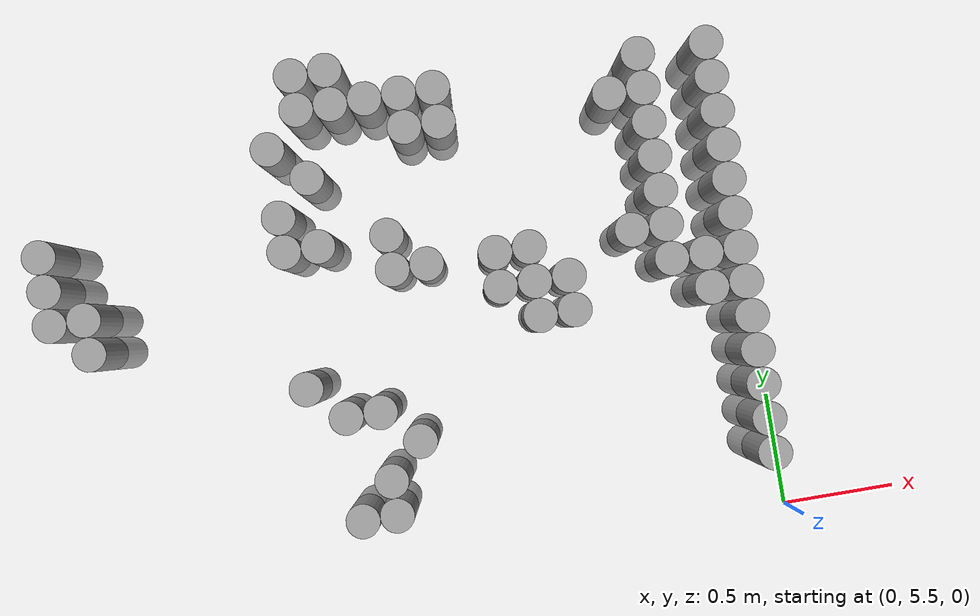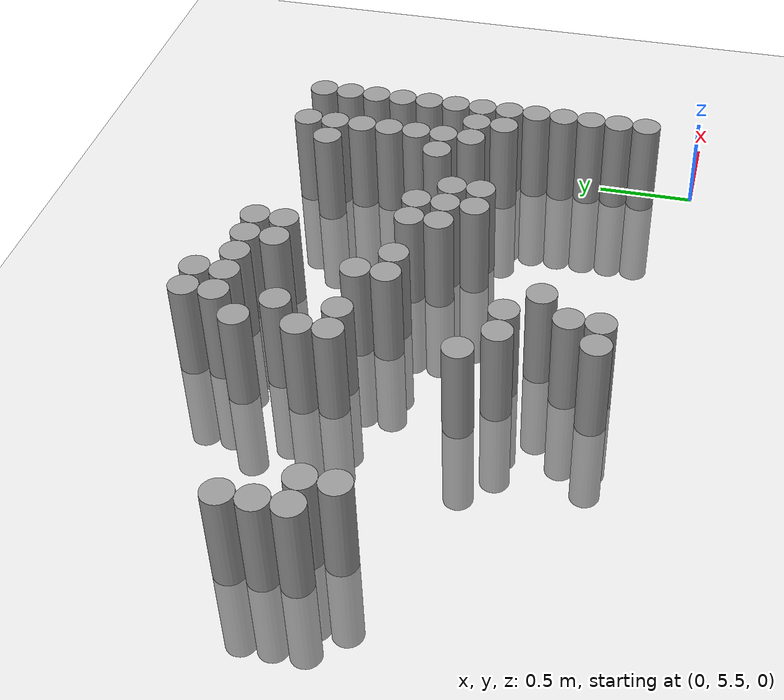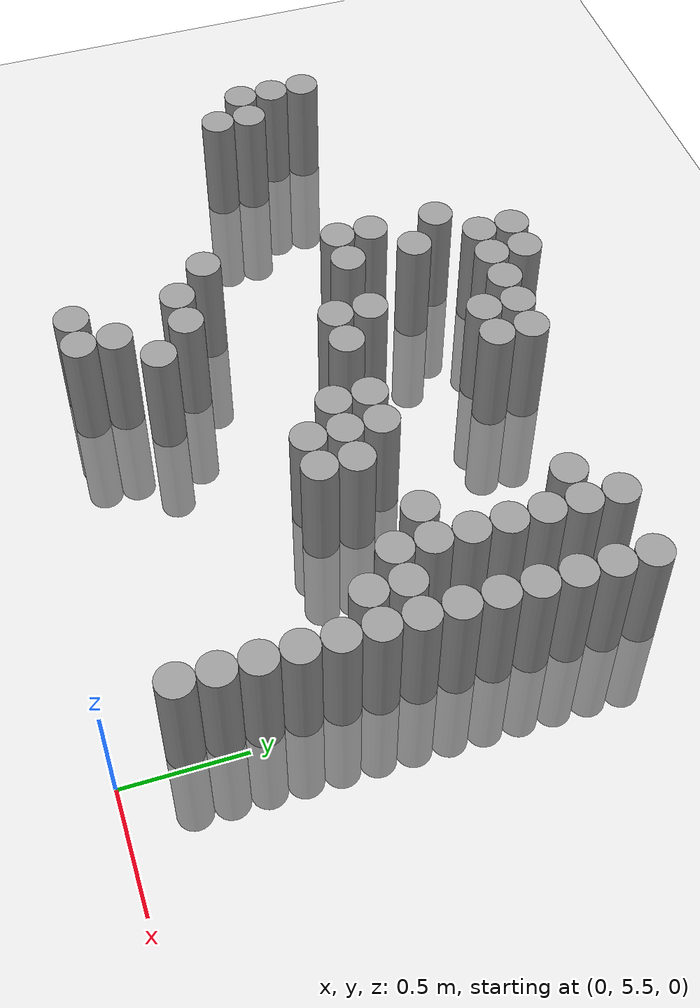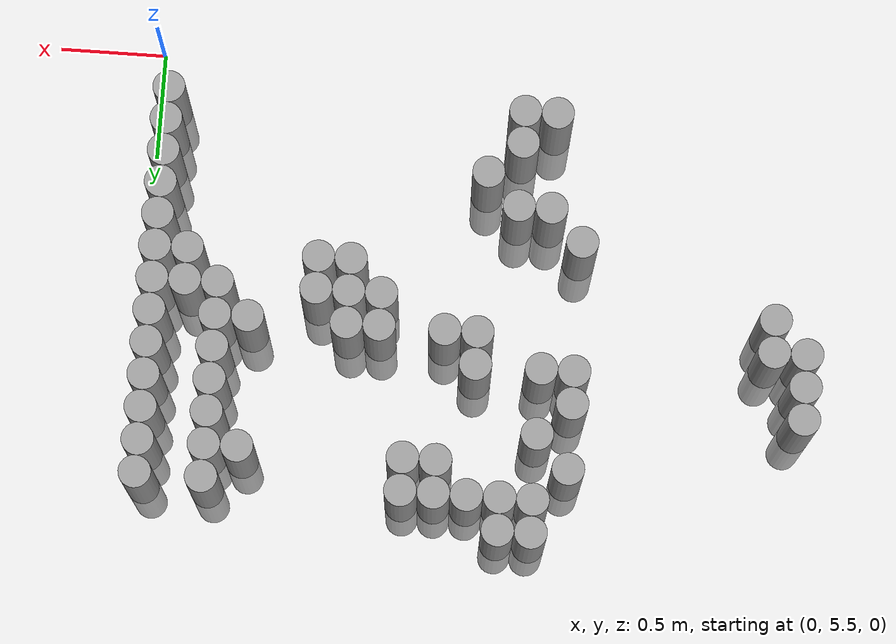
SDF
<sdf version="1.6">
 <world name="default">
  <model name="ground_plane">
   <static>1</static>
   <static>1</static>
   <link name="link">
    <collision name="collision">
     <geometry><plane><normal>0 0 1</normal><size>100 100</size></plane></geometry>
     <surface><friction><ode><mu>100</mu><mu2>50</mu2></ode></friction></surface>
    </collision>
    <visual name="visual">
     <cast_shadows>0</cast_shadows>
     <geometry><plane><normal>0 0 1</normal><size>100 100</size></plane></geometry>
     <material>
      <script><uri>file://media/materials/scripts/gazebo.material</uri><name>Gazebo/Grey</name></script>
     </material>
    </visual>
   </link>
  </model>
  <model name="unit_cylinder_174">
   <static>1</static>
   <pose>-3.075000 6.825000 0.000000 0.000000 0.000000 0.000000</pose>
   <link name="link">
    <inertial>
     <mass>1</mass>
     <inertia><ixx>0.145833</ixx><ixy>0</ixy><ixz>0</ixz><iyy>0.145833</iyy><iyz>0</iyz><izz>0.125</izz></inertia>
    </inertial>
    <collision name="collision">
     <geometry><cylinder><radius>0.075000</radius><length>1</length></cylinder></geometry>
    </collision>
    <visual name="visual">
     <geometry><cylinder><radius>0.075000</radius><length>1</length></cylinder></geometry>
     <material>
      <script><name>Gazebo/Grey</name><uri>file://media/materials/scripts/gazebo.material</uri></script>
     </material>
    </visual>
   </link>
  </model>
  <model name="unit_cylinder_175">
   <static>1</static>
   <pose>-3.075000 6.975000 0.000000 0.000000 0.000000 0.000000</pose>
   <link name="link">
    <inertial>
     <mass>1</mass>
     <inertia><ixx>0.145833</ixx><ixy>0</ixy><ixz>0</ixz><iyy>0.145833</iyy><iyz>0</iyz><izz>0.125</izz></inertia>
    </inertial>
    <collision name="collision">
     <geometry><cylinder><radius>0.075000</radius><length>1</length></cylinder></geometry>
    </collision>
    <visual name="visual">
     <geometry><cylinder><radius>0.075000</radius><length>1</length></cylinder></geometry>
     <material>
      <script><name>Gazebo/Grey</name><uri>file://media/materials/scripts/gazebo.material</uri></script>
     </material>
    </visual>
   </link>
  </model>
  <model name="unit_cylinder_176">
   <static>1</static>
   <pose>-3.075000 7.125000 0.000000 0.000000 0.000000 0.000000</pose>
   <link name="link">
    <inertial>
     <mass>1</mass>
     <inertia><ixx>0.145833</ixx><ixy>0</ixy><ixz>0</ixz><iyy>0.145833</iyy><iyz>0</iyz><izz>0.125</izz></inertia>
    </inertial>
    <collision name="collision">
     <geometry><cylinder><radius>0.075000</radius><length>1</length></cylinder></geometry>
    </collision>
    <visual name="visual">
     <geometry><cylinder><radius>0.075000</radius><length>1</length></cylinder></geometry>
     <material>
      <script><name>Gazebo/Grey</name><uri>file://media/materials/scripts/gazebo.material</uri></script>
     </material>
    </visual>
   </link>
  </model>
  <model name="unit_cylinder_181">
   <static>1</static>
   <pose>-2.925000 6.675000 0.000000 0.000000 0.000000 0.000000</pose>
   <link name="link">
    <inertial>
     <mass>1</mass>
     <inertia><ixx>0.145833</ixx><ixy>0</ixy><ixz>0</ixz><iyy>0.145833</iyy><iyz>0</iyz><izz>0.125</izz></inertia>
    </inertial>
    <collision name="collision">
     <geometry><cylinder><radius>0.075000</radius><length>1</length></cylinder></geometry>
    </collision>
    <visual name="visual">
     <geometry><cylinder><radius>0.075000</radius><length>1</length></cylinder></geometry>
     <material>
      <script><name>Gazebo/Grey</name><uri>file://media/materials/scripts/gazebo.material</uri></script>
     </material>
    </visual>
   </link>
  </model>
  <model name="unit_cylinder_182">
   <static>1</static>
   <pose>-2.925000 6.825000 0.000000 0.000000 0.000000 0.000000</pose>
   <link name="link">
    <inertial>
     <mass>1</mass>
     <inertia><ixx>0.145833</ixx><ixy>0</ixy><ixz>0</ixz><iyy>0.145833</iyy><iyz>0</iyz><izz>0.125</izz></inertia>
    </inertial>
    <collision name="collision">
     <geometry><cylinder><radius>0.075000</radius><length>1</length></cylinder></geometry>
    </collision>
    <visual name="visual">
     <geometry><cylinder><radius>0.075000</radius><length>1</length></cylinder></geometry>
     <material>
      <script><name>Gazebo/Grey</name><uri>file://media/materials/scripts/gazebo.material</uri></script>
     </material>
    </visual>
   </link>
  </model>
  <model name="unit_cylinder_191">
   <static>1</static>
   <pose>-2.025000 6.375000 0.000000 0.000000 0.000000 0.000000</pose>
   <link name="link">
    <inertial>
     <mass>1</mass>
     <inertia><ixx>0.145833</ixx><ixy>0</ixy><ixz>0</ixz><iyy>0.145833</iyy><iyz>0</iyz><izz>0.125</izz></inertia>
    </inertial>
    <collision name="collision">
     <geometry><cylinder><radius>0.075000</radius><length>1</length></cylinder></geometry>
    </collision>
    <visual name="visual">
     <geometry><cylinder><radius>0.075000</radius><length>1</length></cylinder></geometry>
     <material>
      <script><name>Gazebo/Grey</name><uri>file://media/materials/scripts/gazebo.material</uri></script>
     </material>
    </visual>
   </link>
  </model>
  <model name="unit_cylinder_192">
   <static>1</static>
   <pose>-2.025000 6.975000 0.000000 0.000000 0.000000 0.000000</pose>
   <link name="link">
    <inertial>
     <mass>1</mass>
     <inertia><ixx>0.145833</ixx><ixy>0</ixy><ixz>0</ixz><iyy>0.145833</iyy><iyz>0</iyz><izz>0.125</izz></inertia>
    </inertial>
    <collision name="collision">
     <geometry><cylinder><radius>0.075000</radius><length>1</length></cylinder></geometry>
    </collision>
    <visual name="visual">
     <geometry><cylinder><radius>0.075000</radius><length>1</length></cylinder></geometry>
     <material>
      <script><name>Gazebo/Grey</name><uri>file://media/materials/scripts/gazebo.material</uri></script>
     </material>
    </visual>
   </link>
  </model>
  <model name="unit_cylinder_193">
   <static>1</static>
   <pose>-2.025000 7.125000 0.000000 0.000000 0.000000 0.000000</pose>
   <link name="link">
    <inertial>
     <mass>1</mass>
     <inertia><ixx>0.145833</ixx><ixy>0</ixy><ixz>0</ixz><iyy>0.145833</iyy><iyz>0</iyz><izz>0.125</izz></inertia>
    </inertial>
    <collision name="collision">
     <geometry><cylinder><radius>0.075000</radius><length>1</length></cylinder></geometry>
    </collision>
    <visual name="visual">
     <geometry><cylinder><radius>0.075000</radius><length>1</length></cylinder></geometry>
     <material>
      <script><name>Gazebo/Grey</name><uri>file://media/materials/scripts/gazebo.material</uri></script>
     </material>
    </visual>
   </link>
  </model>
  <model name="unit_cylinder_194">
   <static>1</static>
   <pose>-2.025000 7.425000 0.000000 0.000000 0.000000 0.000000</pose>
   <link name="link">
    <inertial>
     <mass>1</mass>
     <inertia><ixx>0.145833</ixx><ixy>0</ixy><ixz>0</ixz><iyy>0.145833</iyy><iyz>0</iyz><izz>0.125</izz></inertia>
    </inertial>
    <collision name="collision">
     <geometry><cylinder><radius>0.075000</radius><length>1</length></cylinder></geometry>
    </collision>
    <visual name="visual">
     <geometry><cylinder><radius>0.075000</radius><length>1</length></cylinder></geometry>
     <material>
      <script><name>Gazebo/Grey</name><uri>file://media/materials/scripts/gazebo.material</uri></script>
     </material>
    </visual>
   </link>
  </model>
  <model name="unit_cylinder_199">
   <static>1</static>
   <pose>-1.875000 5.775000 0.000000 0.000000 0.000000 0.000000</pose>
   <link name="link">
    <inertial>
     <mass>1</mass>
     <inertia><ixx>0.145833</ixx><ixy>0</ixy><ixz>0</ixz><iyy>0.145833</iyy><iyz>0</iyz><izz>0.125</izz></inertia>
    </inertial>
    <collision name="collision">
     <geometry><cylinder><radius>0.075000</radius><length>1</length></cylinder></geometry>
    </collision>
    <visual name="visual">
     <geometry><cylinder><radius>0.075000</radius><length>1</length></cylinder></geometry>
     <material>
      <script><name>Gazebo/Grey</name><uri>file://media/materials/scripts/gazebo.material</uri></script>
     </material>
    </visual>
   </link>
  </model>
  <model name="unit_cylinder_200">
   <static>1</static>
   <pose>-1.875000 6.225000 0.000000 0.000000 0.000000 0.000000</pose>
   <link name="link">
    <inertial>
     <mass>1</mass>
     <inertia><ixx>0.145833</ixx><ixy>0</ixy><ixz>0</ixz><iyy>0.145833</iyy><iyz>0</iyz><izz>0.125</izz></inertia>
    </inertial>
    <collision name="collision">
     <geometry><cylinder><radius>0.075000</radius><length>1</length></cylinder></geometry>
    </collision>
    <visual name="visual">
     <geometry><cylinder><radius>0.075000</radius><length>1</length></cylinder></geometry>
     <material>
      <script><name>Gazebo/Grey</name><uri>file://media/materials/scripts/gazebo.material</uri></script>
     </material>
    </visual>
   </link>
  </model>
  <model name="unit_cylinder_201">
   <static>1</static>
   <pose>-1.875000 6.975000 0.000000 0.000000 0.000000 0.000000</pose>
   <link name="link">
    <inertial>
     <mass>1</mass>
     <inertia><ixx>0.145833</ixx><ixy>0</ixy><ixz>0</ixz><iyy>0.145833</iyy><iyz>0</iyz><izz>0.125</izz></inertia>
    </inertial>
    <collision name="collision">
     <geometry><cylinder><radius>0.075000</radius><length>1</length></cylinder></geometry>
    </collision>
    <visual name="visual">
     <geometry><cylinder><radius>0.075000</radius><length>1</length></cylinder></geometry>
     <material>
      <script><name>Gazebo/Grey</name><uri>file://media/materials/scripts/gazebo.material</uri></script>
     </material>
    </visual>
   </link>
  </model>
  <model name="unit_cylinder_202">
   <static>1</static>
   <pose>-1.875000 7.275000 0.000000 0.000000 0.000000 0.000000</pose>
   <link name="link">
    <inertial>
     <mass>1</mass>
     <inertia><ixx>0.145833</ixx><ixy>0</ixy><ixz>0</ixz><iyy>0.145833</iyy><iyz>0</iyz><izz>0.125</izz></inertia>
    </inertial>
    <collision name="collision">
     <geometry><cylinder><radius>0.075000</radius><length>1</length></cylinder></geometry>
    </collision>
    <visual name="visual">
     <geometry><cylinder><radius>0.075000</radius><length>1</length></cylinder></geometry>
     <material>
      <script><name>Gazebo/Grey</name><uri>file://media/materials/scripts/gazebo.material</uri></script>
     </material>
    </visual>
   </link>
  </model>
  <model name="unit_cylinder_203">
   <static>1</static>
   <pose>-1.875000 7.575000 0.000000 0.000000 0.000000 0.000000</pose>
   <link name="link">
    <inertial>
     <mass>1</mass>
     <inertia><ixx>0.145833</ixx><ixy>0</ixy><ixz>0</ixz><iyy>0.145833</iyy><iyz>0</iyz><izz>0.125</izz></inertia>
    </inertial>
    <collision name="collision">
     <geometry><cylinder><radius>0.075000</radius><length>1</length></cylinder></geometry>
    </collision>
    <visual name="visual">
     <geometry><cylinder><radius>0.075000</radius><length>1</length></cylinder></geometry>
     <material>
      <script><name>Gazebo/Grey</name><uri>file://media/materials/scripts/gazebo.material</uri></script>
     </material>
    </visual>
   </link>
  </model>
  <model name="unit_cylinder_204">
   <static>1</static>
   <pose>-1.875000 7.725000 0.000000 0.000000 0.000000 0.000000</pose>
   <link name="link">
    <inertial>
     <mass>1</mass>
     <inertia><ixx>0.145833</ixx><ixy>0</ixy><ixz>0</ixz><iyy>0.145833</iyy><iyz>0</iyz><izz>0.125</izz></inertia>
    </inertial>
    <collision name="collision">
     <geometry><cylinder><radius>0.075000</radius><length>1</length></cylinder></geometry>
    </collision>
    <visual name="visual">
     <geometry><cylinder><radius>0.075000</radius><length>1</length></cylinder></geometry>
     <material>
      <script><name>Gazebo/Grey</name><uri>file://media/materials/scripts/gazebo.material</uri></script>
     </material>
    </visual>
   </link>
  </model>
  <model name="unit_cylinder_210">
   <static>1</static>
   <pose>-1.725000 5.775000 0.000000 0.000000 0.000000 0.000000</pose>
   <link name="link">
    <inertial>
     <mass>1</mass>
     <inertia><ixx>0.145833</ixx><ixy>0</ixy><ixz>0</ixz><iyy>0.145833</iyy><iyz>0</iyz><izz>0.125</izz></inertia>
    </inertial>
    <collision name="collision">
     <geometry><cylinder><radius>0.075000</radius><length>1</length></cylinder></geometry>
    </collision>
    <visual name="visual">
     <geometry><cylinder><radius>0.075000</radius><length>1</length></cylinder></geometry>
     <material>
      <script><name>Gazebo/Grey</name><uri>file://media/materials/scripts/gazebo.material</uri></script>
     </material>
    </visual>
   </link>
  </model>
  <model name="unit_cylinder_211">
   <static>1</static>
   <pose>-1.725000 5.925000 0.000000 0.000000 0.000000 0.000000</pose>
   <link name="link">
    <inertial>
     <mass>1</mass>
     <inertia><ixx>0.145833</ixx><ixy>0</ixy><ixz>0</ixz><iyy>0.145833</iyy><iyz>0</iyz><izz>0.125</izz></inertia>
    </inertial>
    <collision name="collision">
     <geometry><cylinder><radius>0.075000</radius><length>1</length></cylinder></geometry>
    </collision>
    <visual name="visual">
     <geometry><cylinder><radius>0.075000</radius><length>1</length></cylinder></geometry>
     <material>
      <script><name>Gazebo/Grey</name><uri>file://media/materials/scripts/gazebo.material</uri></script>
     </material>
    </visual>
   </link>
  </model>
  <model name="unit_cylinder_212">
   <static>1</static>
   <pose>-1.725000 6.225000 0.000000 0.000000 0.000000 0.000000</pose>
   <link name="link">
    <inertial>
     <mass>1</mass>
     <inertia><ixx>0.145833</ixx><ixy>0</ixy><ixz>0</ixz><iyy>0.145833</iyy><iyz>0</iyz><izz>0.125</izz></inertia>
    </inertial>
    <collision name="collision">
     <geometry><cylinder><radius>0.075000</radius><length>1</length></cylinder></geometry>
    </collision>
    <visual name="visual">
     <geometry><cylinder><radius>0.075000</radius><length>1</length></cylinder></geometry>
     <material>
      <script><name>Gazebo/Grey</name><uri>file://media/materials/scripts/gazebo.material</uri></script>
     </material>
    </visual>
   </link>
  </model>
  <model name="unit_cylinder_213">
   <static>1</static>
   <pose>-1.725000 7.575000 0.000000 0.000000 0.000000 0.000000</pose>
   <link name="link">
    <inertial>
     <mass>1</mass>
     <inertia><ixx>0.145833</ixx><ixy>0</ixy><ixz>0</ixz><iyy>0.145833</iyy><iyz>0</iyz><izz>0.125</izz></inertia>
    </inertial>
    <collision name="collision">
     <geometry><cylinder><radius>0.075000</radius><length>1</length></cylinder></geometry>
    </collision>
    <visual name="visual">
     <geometry><cylinder><radius>0.075000</radius><length>1</length></cylinder></geometry>
     <material>
      <script><name>Gazebo/Grey</name><uri>file://media/materials/scripts/gazebo.material</uri></script>
     </material>
    </visual>
   </link>
  </model>
  <model name="unit_cylinder_214">
   <static>1</static>
   <pose>-1.725000 7.725000 0.000000 0.000000 0.000000 0.000000</pose>
   <link name="link">
    <inertial>
     <mass>1</mass>
     <inertia><ixx>0.145833</ixx><ixy>0</ixy><ixz>0</ixz><iyy>0.145833</iyy><iyz>0</iyz><izz>0.125</izz></inertia>
    </inertial>
    <collision name="collision">
     <geometry><cylinder><radius>0.075000</radius><length>1</length></cylinder></geometry>
    </collision>
    <visual name="visual">
     <geometry><cylinder><radius>0.075000</radius><length>1</length></cylinder></geometry>
     <material>
      <script><name>Gazebo/Grey</name><uri>file://media/materials/scripts/gazebo.material</uri></script>
     </material>
    </visual>
   </link>
  </model>
  <model name="unit_cylinder_218">
   <static>1</static>
   <pose>-1.575000 6.075000 0.000000 0.000000 0.000000 0.000000</pose>
   <link name="link">
    <inertial>
     <mass>1</mass>
     <inertia><ixx>0.145833</ixx><ixy>0</ixy><ixz>0</ixz><iyy>0.145833</iyy><iyz>0</iyz><izz>0.125</izz></inertia>
    </inertial>
    <collision name="collision">
     <geometry><cylinder><radius>0.075000</radius><length>1</length></cylinder></geometry>
    </collision>
    <visual name="visual">
     <geometry><cylinder><radius>0.075000</radius><length>1</length></cylinder></geometry>
     <material>
      <script><name>Gazebo/Grey</name><uri>file://media/materials/scripts/gazebo.material</uri></script>
     </material>
    </visual>
   </link>
  </model>
  <model name="unit_cylinder_219">
   <static>1</static>
   <pose>-1.575000 6.825000 0.000000 0.000000 0.000000 0.000000</pose>
   <link name="link">
    <inertial>
     <mass>1</mass>
     <inertia><ixx>0.145833</ixx><ixy>0</ixy><ixz>0</ixz><iyy>0.145833</iyy><iyz>0</iyz><izz>0.125</izz></inertia>
    </inertial>
    <collision name="collision">
     <geometry><cylinder><radius>0.075000</radius><length>1</length></cylinder></geometry>
    </collision>
    <visual name="visual">
     <geometry><cylinder><radius>0.075000</radius><length>1</length></cylinder></geometry>
     <material>
      <script><name>Gazebo/Grey</name><uri>file://media/materials/scripts/gazebo.material</uri></script>
     </material>
    </visual>
   </link>
  </model>
  <model name="unit_cylinder_220">
   <static>1</static>
   <pose>-1.575000 6.975000 0.000000 0.000000 0.000000 0.000000</pose>
   <link name="link">
    <inertial>
     <mass>1</mass>
     <inertia><ixx>0.145833</ixx><ixy>0</ixy><ixz>0</ixz><iyy>0.145833</iyy><iyz>0</iyz><izz>0.125</izz></inertia>
    </inertial>
    <collision name="collision">
     <geometry><cylinder><radius>0.075000</radius><length>1</length></cylinder></geometry>
    </collision>
    <visual name="visual">
     <geometry><cylinder><radius>0.075000</radius><length>1</length></cylinder></geometry>
     <material>
      <script><name>Gazebo/Grey</name><uri>file://media/materials/scripts/gazebo.material</uri></script>
     </material>
    </visual>
   </link>
  </model>
  <model name="unit_cylinder_221">
   <static>1</static>
   <pose>-1.575000 7.575000 0.000000 0.000000 0.000000 0.000000</pose>
   <link name="link">
    <inertial>
     <mass>1</mass>
     <inertia><ixx>0.145833</ixx><ixy>0</ixy><ixz>0</ixz><iyy>0.145833</iyy><iyz>0</iyz><izz>0.125</izz></inertia>
    </inertial>
    <collision name="collision">
     <geometry><cylinder><radius>0.075000</radius><length>1</length></cylinder></geometry>
    </collision>
    <visual name="visual">
     <geometry><cylinder><radius>0.075000</radius><length>1</length></cylinder></geometry>
     <material>
      <script><name>Gazebo/Grey</name><uri>file://media/materials/scripts/gazebo.material</uri></script>
     </material>
    </visual>
   </link>
  </model>
  <model name="unit_cylinder_225">
   <static>1</static>
   <pose>-1.425000 6.825000 0.000000 0.000000 0.000000 0.000000</pose>
   <link name="link">
    <inertial>
     <mass>1</mass>
     <inertia><ixx>0.145833</ixx><ixy>0</ixy><ixz>0</ixz><iyy>0.145833</iyy><iyz>0</iyz><izz>0.125</izz></inertia>
    </inertial>
    <collision name="collision">
     <geometry><cylinder><radius>0.075000</radius><length>1</length></cylinder></geometry>
    </collision>
    <visual name="visual">
     <geometry><cylinder><radius>0.075000</radius><length>1</length></cylinder></geometry>
     <material>
      <script><name>Gazebo/Grey</name><uri>file://media/materials/scripts/gazebo.material</uri></script>
     </material>
    </visual>
   </link>
  </model>
  <model name="unit_cylinder_226">
   <static>1</static>
   <pose>-1.425000 7.425000 0.000000 0.000000 0.000000 0.000000</pose>
   <link name="link">
    <inertial>
     <mass>1</mass>
     <inertia><ixx>0.145833</ixx><ixy>0</ixy><ixz>0</ixz><iyy>0.145833</iyy><iyz>0</iyz><izz>0.125</izz></inertia>
    </inertial>
    <collision name="collision">
     <geometry><cylinder><radius>0.075000</radius><length>1</length></cylinder></geometry>
    </collision>
    <visual name="visual">
     <geometry><cylinder><radius>0.075000</radius><length>1</length></cylinder></geometry>
     <material>
      <script><name>Gazebo/Grey</name><uri>file://media/materials/scripts/gazebo.material</uri></script>
     </material>
    </visual>
   </link>
  </model>
  <model name="unit_cylinder_227">
   <static>1</static>
   <pose>-1.425000 7.575000 0.000000 0.000000 0.000000 0.000000</pose>
   <link name="link">
    <inertial>
     <mass>1</mass>
     <inertia><ixx>0.145833</ixx><ixy>0</ixy><ixz>0</ixz><iyy>0.145833</iyy><iyz>0</iyz><izz>0.125</izz></inertia>
    </inertial>
    <collision name="collision">
     <geometry><cylinder><radius>0.075000</radius><length>1</length></cylinder></geometry>
    </collision>
    <visual name="visual">
     <geometry><cylinder><radius>0.075000</radius><length>1</length></cylinder></geometry>
     <material>
      <script><name>Gazebo/Grey</name><uri>file://media/materials/scripts/gazebo.material</uri></script>
     </material>
    </visual>
   </link>
  </model>
  <model name="unit_cylinder_232">
   <static>1</static>
   <pose>-1.275000 7.425000 0.000000 0.000000 0.000000 0.000000</pose>
   <link name="link">
    <inertial>
     <mass>1</mass>
     <inertia><ixx>0.145833</ixx><ixy>0</ixy><ixz>0</ixz><iyy>0.145833</iyy><iyz>0</iyz><izz>0.125</izz></inertia>
    </inertial>
    <collision name="collision">
     <geometry><cylinder><radius>0.075000</radius><length>1</length></cylinder></geometry>
    </collision>
    <visual name="visual">
     <geometry><cylinder><radius>0.075000</radius><length>1</length></cylinder></geometry>
     <material>
      <script><name>Gazebo/Grey</name><uri>file://media/materials/scripts/gazebo.material</uri></script>
     </material>
    </visual>
   </link>
  </model>
  <model name="unit_cylinder_233">
   <static>1</static>
   <pose>-1.275000 7.575000 0.000000 0.000000 0.000000 0.000000</pose>
   <link name="link">
    <inertial>
     <mass>1</mass>
     <inertia><ixx>0.145833</ixx><ixy>0</ixy><ixz>0</ixz><iyy>0.145833</iyy><iyz>0</iyz><izz>0.125</izz></inertia>
    </inertial>
    <collision name="collision">
     <geometry><cylinder><radius>0.075000</radius><length>1</length></cylinder></geometry>
    </collision>
    <visual name="visual">
     <geometry><cylinder><radius>0.075000</radius><length>1</length></cylinder></geometry>
     <material>
      <script><name>Gazebo/Grey</name><uri>file://media/materials/scripts/gazebo.material</uri></script>
     </material>
    </visual>
   </link>
  </model>
  <model name="unit_cylinder_236">
   <static>1</static>
   <pose>-1.125000 6.675000 0.000000 0.000000 0.000000 0.000000</pose>
   <link name="link">
    <inertial>
     <mass>1</mass>
     <inertia><ixx>0.145833</ixx><ixy>0</ixy><ixz>0</ixz><iyy>0.145833</iyy><iyz>0</iyz><izz>0.125</izz></inertia>
    </inertial>
    <collision name="collision">
     <geometry><cylinder><radius>0.075000</radius><length>1</length></cylinder></geometry>
    </collision>
    <visual name="visual">
     <geometry><cylinder><radius>0.075000</radius><length>1</length></cylinder></geometry>
     <material>
      <script><name>Gazebo/Grey</name><uri>file://media/materials/scripts/gazebo.material</uri></script>
     </material>
    </visual>
   </link>
  </model>
  <model name="unit_cylinder_237">
   <static>1</static>
   <pose>-1.125000 6.825000 0.000000 0.000000 0.000000 0.000000</pose>
   <link name="link">
    <inertial>
     <mass>1</mass>
     <inertia><ixx>0.145833</ixx><ixy>0</ixy><ixz>0</ixz><iyy>0.145833</iyy><iyz>0</iyz><izz>0.125</izz></inertia>
    </inertial>
    <collision name="collision">
     <geometry><cylinder><radius>0.075000</radius><length>1</length></cylinder></geometry>
    </collision>
    <visual name="visual">
     <geometry><cylinder><radius>0.075000</radius><length>1</length></cylinder></geometry>
     <material>
      <script><name>Gazebo/Grey</name><uri>file://media/materials/scripts/gazebo.material</uri></script>
     </material>
    </visual>
   </link>
  </model>
  <model name="unit_cylinder_240">
   <static>1</static>
   <pose>-0.975000 6.525000 0.000000 0.000000 0.000000 0.000000</pose>
   <link name="link">
    <inertial>
     <mass>1</mass>
     <inertia><ixx>0.145833</ixx><ixy>0</ixy><ixz>0</ixz><iyy>0.145833</iyy><iyz>0</iyz><izz>0.125</izz></inertia>
    </inertial>
    <collision name="collision">
     <geometry><cylinder><radius>0.075000</radius><length>1</length></cylinder></geometry>
    </collision>
    <visual name="visual">
     <geometry><cylinder><radius>0.075000</radius><length>1</length></cylinder></geometry>
     <material>
      <script><name>Gazebo/Grey</name><uri>file://media/materials/scripts/gazebo.material</uri></script>
     </material>
    </visual>
   </link>
  </model>
  <model name="unit_cylinder_241">
   <static>1</static>
   <pose>-0.975000 6.675000 0.000000 0.000000 0.000000 0.000000</pose>
   <link name="link">
    <inertial>
     <mass>1</mass>
     <inertia><ixx>0.145833</ixx><ixy>0</ixy><ixz>0</ixz><iyy>0.145833</iyy><iyz>0</iyz><izz>0.125</izz></inertia>
    </inertial>
    <collision name="collision">
     <geometry><cylinder><radius>0.075000</radius><length>1</length></cylinder></geometry>
    </collision>
    <visual name="visual">
     <geometry><cylinder><radius>0.075000</radius><length>1</length></cylinder></geometry>
     <material>
      <script><name>Gazebo/Grey</name><uri>file://media/materials/scripts/gazebo.material</uri></script>
     </material>
    </visual>
   </link>
  </model>
  <model name="unit_cylinder_242">
   <static>1</static>
   <pose>-0.975000 6.825000 0.000000 0.000000 0.000000 0.000000</pose>
   <link name="link">
    <inertial>
     <mass>1</mass>
     <inertia><ixx>0.145833</ixx><ixy>0</ixy><ixz>0</ixz><iyy>0.145833</iyy><iyz>0</iyz><izz>0.125</izz></inertia>
    </inertial>
    <collision name="collision">
     <geometry><cylinder><radius>0.075000</radius><length>1</length></cylinder></geometry>
    </collision>
    <visual name="visual">
     <geometry><cylinder><radius>0.075000</radius><length>1</length></cylinder></geometry>
     <material>
      <script><name>Gazebo/Grey</name><uri>file://media/materials/scripts/gazebo.material</uri></script>
     </material>
    </visual>
   </link>
  </model>
  <model name="unit_cylinder_245">
   <static>1</static>
   <pose>-0.825000 6.525000 0.000000 0.000000 0.000000 0.000000</pose>
   <link name="link">
    <inertial>
     <mass>1</mass>
     <inertia><ixx>0.145833</ixx><ixy>0</ixy><ixz>0</ixz><iyy>0.145833</iyy><iyz>0</iyz><izz>0.125</izz></inertia>
    </inertial>
    <collision name="collision">
     <geometry><cylinder><radius>0.075000</radius><length>1</length></cylinder></geometry>
    </collision>
    <visual name="visual">
     <geometry><cylinder><radius>0.075000</radius><length>1</length></cylinder></geometry>
     <material>
      <script><name>Gazebo/Grey</name><uri>file://media/materials/scripts/gazebo.material</uri></script>
     </material>
    </visual>
   </link>
  </model>
  <model name="unit_cylinder_246">
   <static>1</static>
   <pose>-0.825000 6.675000 0.000000 0.000000 0.000000 0.000000</pose>
   <link name="link">
    <inertial>
     <mass>1</mass>
     <inertia><ixx>0.145833</ixx><ixy>0</ixy><ixz>0</ixz><iyy>0.145833</iyy><iyz>0</iyz><izz>0.125</izz></inertia>
    </inertial>
    <collision name="collision">
     <geometry><cylinder><radius>0.075000</radius><length>1</length></cylinder></geometry>
    </collision>
    <visual name="visual">
     <geometry><cylinder><radius>0.075000</radius><length>1</length></cylinder></geometry>
     <material>
      <script><name>Gazebo/Grey</name><uri>file://media/materials/scripts/gazebo.material</uri></script>
     </material>
    </visual>
   </link>
  </model>
  <model name="unit_cylinder_247">
   <static>1</static>
   <pose>-0.525000 6.825000 0.000000 0.000000 0.000000 0.000000</pose>
   <link name="link">
    <inertial>
     <mass>1</mass>
     <inertia><ixx>0.145833</ixx><ixy>0</ixy><ixz>0</ixz><iyy>0.145833</iyy><iyz>0</iyz><izz>0.125</izz></inertia>
    </inertial>
    <collision name="collision">
     <geometry><cylinder><radius>0.075000</radius><length>1</length></cylinder></geometry>
    </collision>
    <visual name="visual">
     <geometry><cylinder><radius>0.075000</radius><length>1</length></cylinder></geometry>
     <material>
      <script><name>Gazebo/Grey</name><uri>file://media/materials/scripts/gazebo.material</uri></script>
     </material>
    </visual>
   </link>
  </model>
  <model name="unit_cylinder_248">
   <static>1</static>
   <pose>-0.525000 7.425000 0.000000 0.000000 0.000000 0.000000</pose>
   <link name="link">
    <inertial>
     <mass>1</mass>
     <inertia><ixx>0.145833</ixx><ixy>0</ixy><ixz>0</ixz><iyy>0.145833</iyy><iyz>0</iyz><izz>0.125</izz></inertia>
    </inertial>
    <collision name="collision">
     <geometry><cylinder><radius>0.075000</radius><length>1</length></cylinder></geometry>
    </collision>
    <visual name="visual">
     <geometry><cylinder><radius>0.075000</radius><length>1</length></cylinder></geometry>
     <material>
      <script><name>Gazebo/Grey</name><uri>file://media/materials/scripts/gazebo.material</uri></script>
     </material>
    </visual>
   </link>
  </model>
  <model name="unit_cylinder_254">
   <static>1</static>
   <pose>-0.375000 6.675000 0.000000 0.000000 0.000000 0.000000</pose>
   <link name="link">
    <inertial>
     <mass>1</mass>
     <inertia><ixx>0.145833</ixx><ixy>0</ixy><ixz>0</ixz><iyy>0.145833</iyy><iyz>0</iyz><izz>0.125</izz></inertia>
    </inertial>
    <collision name="collision">
     <geometry><cylinder><radius>0.075000</radius><length>1</length></cylinder></geometry>
    </collision>
    <visual name="visual">
     <geometry><cylinder><radius>0.075000</radius><length>1</length></cylinder></geometry>
     <material>
      <script><name>Gazebo/Grey</name><uri>file://media/materials/scripts/gazebo.material</uri></script>
     </material>
    </visual>
   </link>
  </model>
  <model name="unit_cylinder_255">
   <static>1</static>
   <pose>-0.375000 6.825000 0.000000 0.000000 0.000000 0.000000</pose>
   <link name="link">
    <inertial>
     <mass>1</mass>
     <inertia><ixx>0.145833</ixx><ixy>0</ixy><ixz>0</ixz><iyy>0.145833</iyy><iyz>0</iyz><izz>0.125</izz></inertia>
    </inertial>
    <collision name="collision">
     <geometry><cylinder><radius>0.075000</radius><length>1</length></cylinder></geometry>
    </collision>
    <visual name="visual">
     <geometry><cylinder><radius>0.075000</radius><length>1</length></cylinder></geometry>
     <material>
      <script><name>Gazebo/Grey</name><uri>file://media/materials/scripts/gazebo.material</uri></script>
     </material>
    </visual>
   </link>
  </model>
  <model name="unit_cylinder_256">
   <static>1</static>
   <pose>-0.375000 6.975000 0.000000 0.000000 0.000000 0.000000</pose>
   <link name="link">
    <inertial>
     <mass>1</mass>
     <inertia><ixx>0.145833</ixx><ixy>0</ixy><ixz>0</ixz><iyy>0.145833</iyy><iyz>0</iyz><izz>0.125</izz></inertia>
    </inertial>
    <collision name="collision">
     <geometry><cylinder><radius>0.075000</radius><length>1</length></cylinder></geometry>
    </collision>
    <visual name="visual">
     <geometry><cylinder><radius>0.075000</radius><length>1</length></cylinder></geometry>
     <material>
      <script><name>Gazebo/Grey</name><uri>file://media/materials/scripts/gazebo.material</uri></script>
     </material>
    </visual>
   </link>
  </model>
  <model name="unit_cylinder_257">
   <static>1</static>
   <pose>-0.375000 7.125000 0.000000 0.000000 0.000000 0.000000</pose>
   <link name="link">
    <inertial>
     <mass>1</mass>
     <inertia><ixx>0.145833</ixx><ixy>0</ixy><ixz>0</ixz><iyy>0.145833</iyy><iyz>0</iyz><izz>0.125</izz></inertia>
    </inertial>
    <collision name="collision">
     <geometry><cylinder><radius>0.075000</radius><length>1</length></cylinder></geometry>
    </collision>
    <visual name="visual">
     <geometry><cylinder><radius>0.075000</radius><length>1</length></cylinder></geometry>
     <material>
      <script><name>Gazebo/Grey</name><uri>file://media/materials/scripts/gazebo.material</uri></script>
     </material>
    </visual>
   </link>
  </model>
  <model name="unit_cylinder_258">
   <static>1</static>
   <pose>-0.375000 7.275000 0.000000 0.000000 0.000000 0.000000</pose>
   <link name="link">
    <inertial>
     <mass>1</mass>
     <inertia><ixx>0.145833</ixx><ixy>0</ixy><ixz>0</ixz><iyy>0.145833</iyy><iyz>0</iyz><izz>0.125</izz></inertia>
    </inertial>
    <collision name="collision">
     <geometry><cylinder><radius>0.075000</radius><length>1</length></cylinder></geometry>
    </collision>
    <visual name="visual">
     <geometry><cylinder><radius>0.075000</radius><length>1</length></cylinder></geometry>
     <material>
      <script><name>Gazebo/Grey</name><uri>file://media/materials/scripts/gazebo.material</uri></script>
     </material>
    </visual>
   </link>
  </model>
  <model name="unit_cylinder_259">
   <static>1</static>
   <pose>-0.375000 7.425000 0.000000 0.000000 0.000000 0.000000</pose>
   <link name="link">
    <inertial>
     <mass>1</mass>
     <inertia><ixx>0.145833</ixx><ixy>0</ixy><ixz>0</ixz><iyy>0.145833</iyy><iyz>0</iyz><izz>0.125</izz></inertia>
    </inertial>
    <collision name="collision">
     <geometry><cylinder><radius>0.075000</radius><length>1</length></cylinder></geometry>
    </collision>
    <visual name="visual">
     <geometry><cylinder><radius>0.075000</radius><length>1</length></cylinder></geometry>
     <material>
      <script><name>Gazebo/Grey</name><uri>file://media/materials/scripts/gazebo.material</uri></script>
     </material>
    </visual>
   </link>
  </model>
  <model name="unit_cylinder_260">
   <static>1</static>
   <pose>-0.375000 7.575000 0.000000 0.000000 0.000000 0.000000</pose>
   <link name="link">
    <inertial>
     <mass>1</mass>
     <inertia><ixx>0.145833</ixx><ixy>0</ixy><ixz>0</ixz><iyy>0.145833</iyy><iyz>0</iyz><izz>0.125</izz></inertia>
    </inertial>
    <collision name="collision">
     <geometry><cylinder><radius>0.075000</radius><length>1</length></cylinder></geometry>
    </collision>
    <visual name="visual">
     <geometry><cylinder><radius>0.075000</radius><length>1</length></cylinder></geometry>
     <material>
      <script><name>Gazebo/Grey</name><uri>file://media/materials/scripts/gazebo.material</uri></script>
     </material>
    </visual>
   </link>
  </model>
  <model name="unit_cylinder_265">
   <static>1</static>
   <pose>-0.225000 6.525000 0.000000 0.000000 0.000000 0.000000</pose>
   <link name="link">
    <inertial>
     <mass>1</mass>
     <inertia><ixx>0.145833</ixx><ixy>0</ixy><ixz>0</ixz><iyy>0.145833</iyy><iyz>0</iyz><izz>0.125</izz></inertia>
    </inertial>
    <collision name="collision">
     <geometry><cylinder><radius>0.075000</radius><length>1</length></cylinder></geometry>
    </collision>
    <visual name="visual">
     <geometry><cylinder><radius>0.075000</radius><length>1</length></cylinder></geometry>
     <material>
      <script><name>Gazebo/Grey</name><uri>file://media/materials/scripts/gazebo.material</uri></script>
     </material>
    </visual>
   </link>
  </model>
  <model name="unit_cylinder_266">
   <static>1</static>
   <pose>-0.225000 6.675000 0.000000 0.000000 0.000000 0.000000</pose>
   <link name="link">
    <inertial>
     <mass>1</mass>
     <inertia><ixx>0.145833</ixx><ixy>0</ixy><ixz>0</ixz><iyy>0.145833</iyy><iyz>0</iyz><izz>0.125</izz></inertia>
    </inertial>
    <collision name="collision">
     <geometry><cylinder><radius>0.075000</radius><length>1</length></cylinder></geometry>
    </collision>
    <visual name="visual">
     <geometry><cylinder><radius>0.075000</radius><length>1</length></cylinder></geometry>
     <material>
      <script><name>Gazebo/Grey</name><uri>file://media/materials/scripts/gazebo.material</uri></script>
     </material>
    </visual>
   </link>
  </model>
  <model name="unit_cylinder_277">
   <static>1</static>
   <pose>-0.075000 5.775000 0.000000 0.000000 0.000000 0.000000</pose>
   <link name="link">
    <inertial>
     <mass>1</mass>
     <inertia><ixx>0.145833</ixx><ixy>0</ixy><ixz>0</ixz><iyy>0.145833</iyy><iyz>0</iyz><izz>0.125</izz></inertia>
    </inertial>
    <collision name="collision">
     <geometry><cylinder><radius>0.075000</radius><length>1</length></cylinder></geometry>
    </collision>
    <visual name="visual">
     <geometry><cylinder><radius>0.075000</radius><length>1</length></cylinder></geometry>
     <material>
      <script><name>Gazebo/Grey</name><uri>file://media/materials/scripts/gazebo.material</uri></script>
     </material>
    </visual>
   </link>
  </model>
  <model name="unit_cylinder_278">
   <static>1</static>
   <pose>-0.075000 5.925000 0.000000 0.000000 0.000000 0.000000</pose>
   <link name="link">
    <inertial>
     <mass>1</mass>
     <inertia><ixx>0.145833</ixx><ixy>0</ixy><ixz>0</ixz><iyy>0.145833</iyy><iyz>0</iyz><izz>0.125</izz></inertia>
    </inertial>
    <collision name="collision">
     <geometry><cylinder><radius>0.075000</radius><length>1</length></cylinder></geometry>
    </collision>
    <visual name="visual">
     <geometry><cylinder><radius>0.075000</radius><length>1</length></cylinder></geometry>
     <material>
      <script><name>Gazebo/Grey</name><uri>file://media/materials/scripts/gazebo.material</uri></script>
     </material>
    </visual>
   </link>
  </model>
  <model name="unit_cylinder_279">
   <static>1</static>
   <pose>-0.075000 6.075000 0.000000 0.000000 0.000000 0.000000</pose>
   <link name="link">
    <inertial>
     <mass>1</mass>
     <inertia><ixx>0.145833</ixx><ixy>0</ixy><ixz>0</ixz><iyy>0.145833</iyy><iyz>0</iyz><izz>0.125</izz></inertia>
    </inertial>
    <collision name="collision">
     <geometry><cylinder><radius>0.075000</radius><length>1</length></cylinder></geometry>
    </collision>
    <visual name="visual">
     <geometry><cylinder><radius>0.075000</radius><length>1</length></cylinder></geometry>
     <material>
      <script><name>Gazebo/Grey</name><uri>file://media/materials/scripts/gazebo.material</uri></script>
     </material>
    </visual>
   </link>
  </model>
  <model name="unit_cylinder_280">
   <static>1</static>
   <pose>-0.075000 6.225000 0.000000 0.000000 0.000000 0.000000</pose>
   <link name="link">
    <inertial>
     <mass>1</mass>
     <inertia><ixx>0.145833</ixx><ixy>0</ixy><ixz>0</ixz><iyy>0.145833</iyy><iyz>0</iyz><izz>0.125</izz></inertia>
    </inertial>
    <collision name="collision">
     <geometry><cylinder><radius>0.075000</radius><length>1</length></cylinder></geometry>
    </collision>
    <visual name="visual">
     <geometry><cylinder><radius>0.075000</radius><length>1</length></cylinder></geometry>
     <material>
      <script><name>Gazebo/Grey</name><uri>file://media/materials/scripts/gazebo.material</uri></script>
     </material>
    </visual>
   </link>
  </model>
  <model name="unit_cylinder_281">
   <static>1</static>
   <pose>-0.075000 6.375000 0.000000 0.000000 0.000000 0.000000</pose>
   <link name="link">
    <inertial>
     <mass>1</mass>
     <inertia><ixx>0.145833</ixx><ixy>0</ixy><ixz>0</ixz><iyy>0.145833</iyy><iyz>0</iyz><izz>0.125</izz></inertia>
    </inertial>
    <collision name="collision">
     <geometry><cylinder><radius>0.075000</radius><length>1</length></cylinder></geometry>
    </collision>
    <visual name="visual">
     <geometry><cylinder><radius>0.075000</radius><length>1</length></cylinder></geometry>
     <material>
      <script><name>Gazebo/Grey</name><uri>file://media/materials/scripts/gazebo.material</uri></script>
     </material>
    </visual>
   </link>
  </model>
  <model name="unit_cylinder_282">
   <static>1</static>
   <pose>-0.075000 6.525000 0.000000 0.000000 0.000000 0.000000</pose>
   <link name="link">
    <inertial>
     <mass>1</mass>
     <inertia><ixx>0.145833</ixx><ixy>0</ixy><ixz>0</ixz><iyy>0.145833</iyy><iyz>0</iyz><izz>0.125</izz></inertia>
    </inertial>
    <collision name="collision">
     <geometry><cylinder><radius>0.075000</radius><length>1</length></cylinder></geometry>
    </collision>
    <visual name="visual">
     <geometry><cylinder><radius>0.075000</radius><length>1</length></cylinder></geometry>
     <material>
      <script><name>Gazebo/Grey</name><uri>file://media/materials/scripts/gazebo.material</uri></script>
     </material>
    </visual>
   </link>
  </model>
  <model name="unit_cylinder_283">
   <static>1</static>
   <pose>-0.075000 6.675000 0.000000 0.000000 0.000000 0.000000</pose>
   <link name="link">
    <inertial>
     <mass>1</mass>
     <inertia><ixx>0.145833</ixx><ixy>0</ixy><ixz>0</ixz><iyy>0.145833</iyy><iyz>0</iyz><izz>0.125</izz></inertia>
    </inertial>
    <collision name="collision">
     <geometry><cylinder><radius>0.075000</radius><length>1</length></cylinder></geometry>
    </collision>
    <visual name="visual">
     <geometry><cylinder><radius>0.075000</radius><length>1</length></cylinder></geometry>
     <material>
      <script><name>Gazebo/Grey</name><uri>file://media/materials/scripts/gazebo.material</uri></script>
     </material>
    </visual>
   </link>
  </model>
  <model name="unit_cylinder_284">
   <static>1</static>
   <pose>-0.075000 6.825000 0.000000 0.000000 0.000000 0.000000</pose>
   <link name="link">
    <inertial>
     <mass>1</mass>
     <inertia><ixx>0.145833</ixx><ixy>0</ixy><ixz>0</ixz><iyy>0.145833</iyy><iyz>0</iyz><izz>0.125</izz></inertia>
    </inertial>
    <collision name="collision">
     <geometry><cylinder><radius>0.075000</radius><length>1</length></cylinder></geometry>
    </collision>
    <visual name="visual">
     <geometry><cylinder><radius>0.075000</radius><length>1</length></cylinder></geometry>
     <material>
      <script><name>Gazebo/Grey</name><uri>file://media/materials/scripts/gazebo.material</uri></script>
     </material>
    </visual>
   </link>
  </model>
  <model name="unit_cylinder_285">
   <static>1</static>
   <pose>-0.075000 6.975000 0.000000 0.000000 0.000000 0.000000</pose>
   <link name="link">
    <inertial>
     <mass>1</mass>
     <inertia><ixx>0.145833</ixx><ixy>0</ixy><ixz>0</ixz><iyy>0.145833</iyy><iyz>0</iyz><izz>0.125</izz></inertia>
    </inertial>
    <collision name="collision">
     <geometry><cylinder><radius>0.075000</radius><length>1</length></cylinder></geometry>
    </collision>
    <visual name="visual">
     <geometry><cylinder><radius>0.075000</radius><length>1</length></cylinder></geometry>
     <material>
      <script><name>Gazebo/Grey</name><uri>file://media/materials/scripts/gazebo.material</uri></script>
     </material>
    </visual>
   </link>
  </model>
  <model name="unit_cylinder_286">
   <static>1</static>
   <pose>-0.075000 7.125000 0.000000 0.000000 0.000000 0.000000</pose>
   <link name="link">
    <inertial>
     <mass>1</mass>
     <inertia><ixx>0.145833</ixx><ixy>0</ixy><ixz>0</ixz><iyy>0.145833</iyy><iyz>0</iyz><izz>0.125</izz></inertia>
    </inertial>
    <collision name="collision">
     <geometry><cylinder><radius>0.075000</radius><length>1</length></cylinder></geometry>
    </collision>
    <visual name="visual">
     <geometry><cylinder><radius>0.075000</radius><length>1</length></cylinder></geometry>
     <material>
      <script><name>Gazebo/Grey</name><uri>file://media/materials/scripts/gazebo.material</uri></script>
     </material>
    </visual>
   </link>
  </model>
  <model name="unit_cylinder_287">
   <static>1</static>
   <pose>-0.075000 7.275000 0.000000 0.000000 0.000000 0.000000</pose>
   <link name="link">
    <inertial>
     <mass>1</mass>
     <inertia><ixx>0.145833</ixx><ixy>0</ixy><ixz>0</ixz><iyy>0.145833</iyy><iyz>0</iyz><izz>0.125</izz></inertia>
    </inertial>
    <collision name="collision">
     <geometry><cylinder><radius>0.075000</radius><length>1</length></cylinder></geometry>
    </collision>
    <visual name="visual">
     <geometry><cylinder><radius>0.075000</radius><length>1</length></cylinder></geometry>
     <material>
      <script><name>Gazebo/Grey</name><uri>file://media/materials/scripts/gazebo.material</uri></script>
     </material>
    </visual>
   </link>
  </model>
  <model name="unit_cylinder_288">
   <static>1</static>
   <pose>-0.075000 7.425000 0.000000 0.000000 0.000000 0.000000</pose>
   <link name="link">
    <inertial>
     <mass>1</mass>
     <inertia><ixx>0.145833</ixx><ixy>0</ixy><ixz>0</ixz><iyy>0.145833</iyy><iyz>0</iyz><izz>0.125</izz></inertia>
    </inertial>
    <collision name="collision">
     <geometry><cylinder><radius>0.075000</radius><length>1</length></cylinder></geometry>
    </collision>
    <visual name="visual">
     <geometry><cylinder><radius>0.075000</radius><length>1</length></cylinder></geometry>
     <material>
      <script><name>Gazebo/Grey</name><uri>file://media/materials/scripts/gazebo.material</uri></script>
     </material>
    </visual>
   </link>
  </model>
  <model name="unit_cylinder_289">
   <static>1</static>
   <pose>-0.075000 7.575000 0.000000 0.000000 0.000000 0.000000</pose>
   <link name="link">
    <inertial>
     <mass>1</mass>
     <inertia><ixx>0.145833</ixx><ixy>0</ixy><ixz>0</ixz><iyy>0.145833</iyy><iyz>0</iyz><izz>0.125</izz></inertia>
    </inertial>
    <collision name="collision">
     <geometry><cylinder><radius>0.075000</radius><length>1</length></cylinder></geometry>
    </collision>
    <visual name="visual">
     <geometry><cylinder><radius>0.075000</radius><length>1</length></cylinder></geometry>
     <material>
      <script><name>Gazebo/Grey</name><uri>file://media/materials/scripts/gazebo.material</uri></script>
     </material>
    </visual>
   </link>
  </model>
 </world>
</sdf>
